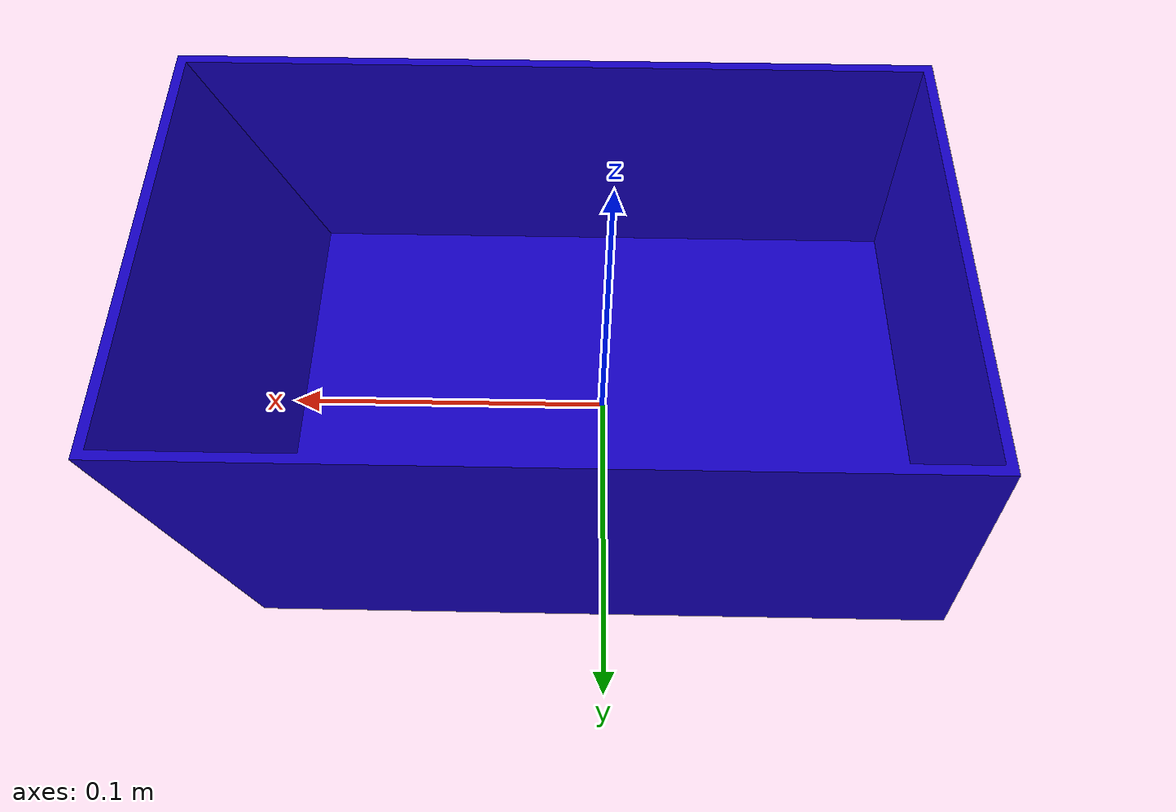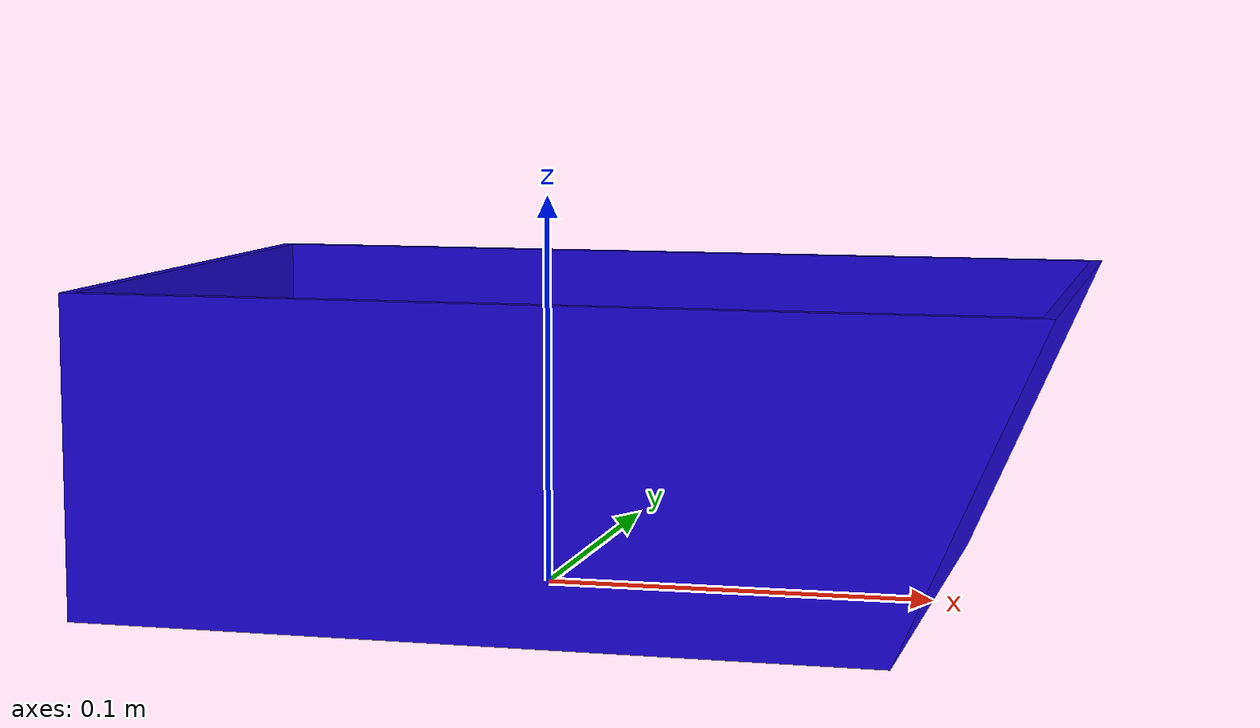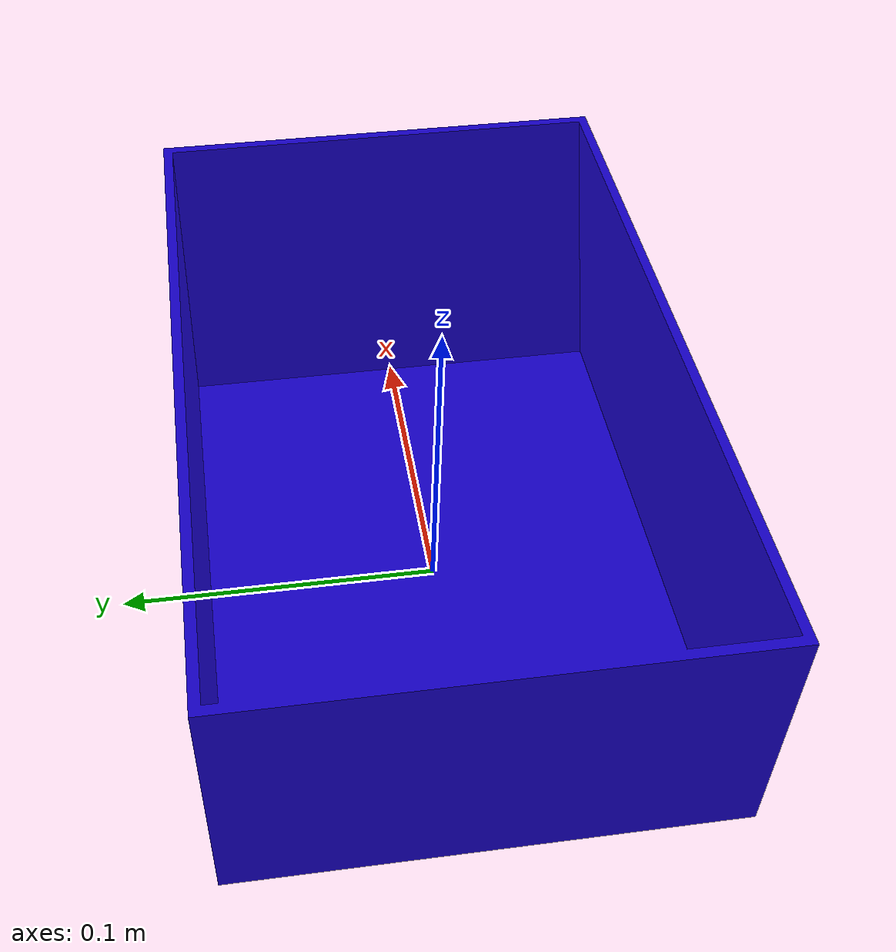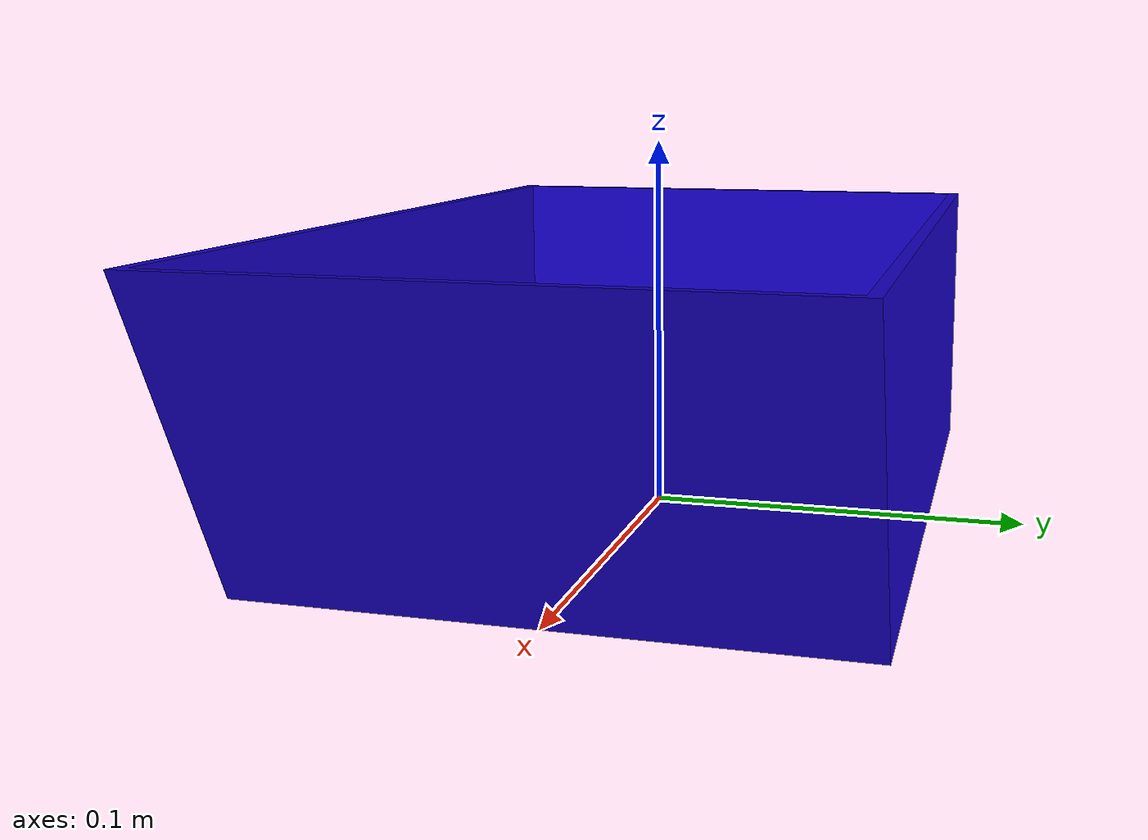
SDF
<?xml version="1.0" ?>
<sdf version="1.6">
  <model name="car">
    <static>true</static>
    <link name="link">
      <collision name="collision">
        <pose>0 0 0 0 -0 1.57</pose>
        <geometry>
          <mesh>
            <scale>1 1 1</scale>
            <uri>model://box/meshes/box.stl</uri>
          </mesh>
           <surface>
            <friction>
              <ode>
                <mu>1.2</mu>
                <mu2>1.2</mu2>
              </ode>
            </friction>
          </surface>
        </geometry>
      </collision>
      <visual name="visual">
        <pose>0 0 0 0 -0 1.57</pose>
        <geometry>
          <mesh>
            <scale>1 1 1</scale>
            <uri>model://box/meshes/box.dae</uri>
          </mesh>
        </geometry>
      </visual>
    </link>
  </model>
</sdf>
